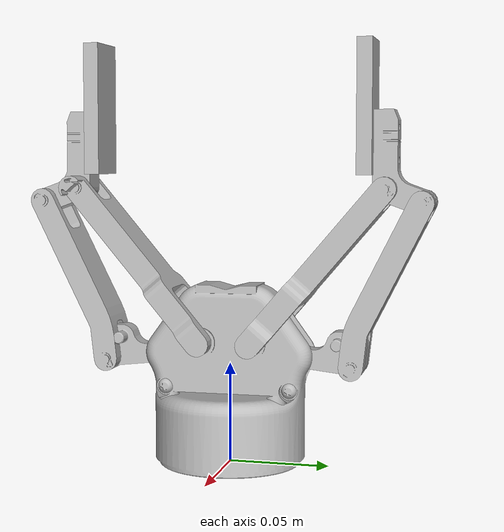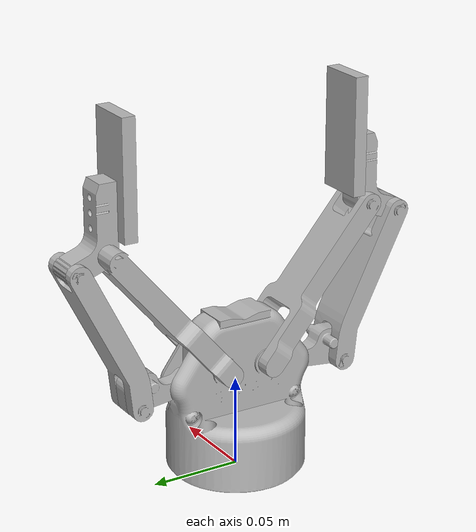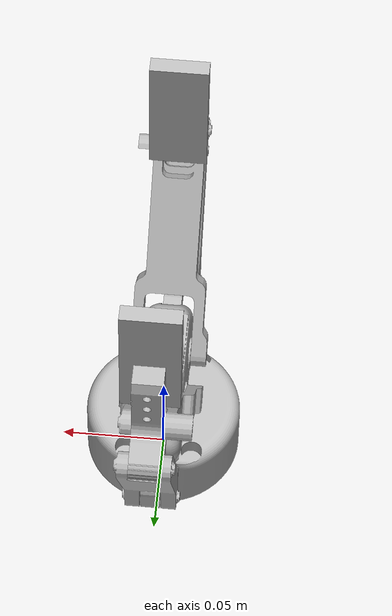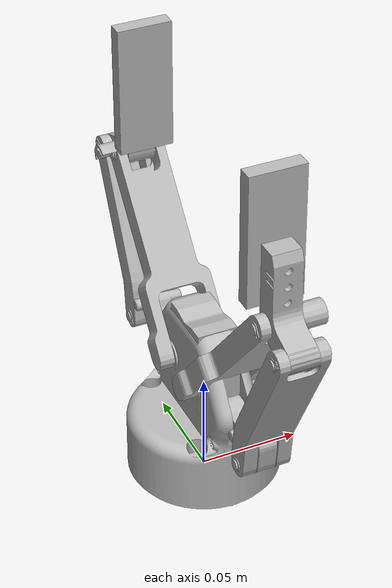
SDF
<sdf version='1.7'>
  <model name='robotiq_arg2f_140_model'>
    <link name='robotiq_arg2f_base_link'>
      <inertial>
        <pose>0 -5e-06 0.03145 0 -0 0</pose>
        <mass>0.22652</mass>
        <inertia>
          <ixx>0.00020005</ixx>
          <ixy>-4.2442e-10</ixy>
          <ixz>-2.9069e-10</ixz>
          <iyy>0.00017832</iyy>
          <iyz>-3.4402e-08</iyz>
          <izz>0.00013478</izz>
        </inertia>
      </inertial>
      <collision name='robotiq_arg2f_base_link_collision'>
        <pose>0 0 0 0 -0 0</pose>
        <geometry>
          <mesh>
            <scale>1 1 1</scale>
            <uri>/home/dan/Projects/Pydrake-robotiq140/catkin_ws/src/robotiq/robotiq_2f_140_gripper_visualization/meshes/collision/robotiq_arg2f_base_link.obj</uri>
          </mesh>
        </geometry>
      </collision>
      <visual name='robotiq_arg2f_base_link_visual'>
        <pose>0 0 0 0 -0 0</pose>
        <geometry>
          <mesh>
            <scale>1 1 1</scale>
            <uri>/home/dan/Projects/Pydrake-robotiq140/catkin_ws/src/robotiq/robotiq_2f_140_gripper_visualization/meshes/visual/robotiq_arg2f_base_link.obj</uri>
          </mesh>
        </geometry>
      </visual>
    </link>
    <joint name='finger_joint' type='revolute'>
      <pose relative_to='robotiq_arg2f_base_link'>0 -0.030601 0.054905 2.2958 -0 0</pose>
      <parent>robotiq_arg2f_base_link</parent>
      <child>left_outer_knuckle</child>
      <axis>
        <xyz>-1 0 0</xyz>
        <limit>
          <lower>0</lower>
          <upper>0.7</upper>
          <effort>1000</effort>
          <velocity>2</velocity>
        </limit>
        <dynamics>
          <spring_reference>0</spring_reference>
          <spring_stiffness>0</spring_stiffness>
        </dynamics>
      </axis>
    </joint>
    <link name='left_outer_knuckle'>
      <pose relative_to='finger_joint'>0 0 0 0 -0 0</pose>
      <inertial>
        <pose>0.000164 0.04584 0.01178 0 -0 0</pose>
        <mass>0.0311462</mass>
        <inertia>
          <ixx>2.96016e-05</ixx>
          <ixy>-1.09755e-07</ixy>
          <ixz>7.40449e-08</ixz>
          <iyy>1.16215e-05</iyy>
          <iyz>1.08762e-05</iyz>
          <izz>2.07508e-05</izz>
        </inertia>
      </inertial>
      <collision name='left_outer_knuckle_collision'>
        <pose>0 0 0 0 -0 0</pose>
        <geometry>
          <mesh>
            <scale>1 1 1</scale>
            <uri>/home/dan/Projects/Pydrake-robotiq140/catkin_ws/src/robotiq/robotiq_2f_140_gripper_visualization/meshes/collision/robotiq_arg2f_140_outer_knuckle.obj</uri>
          </mesh>
        </geometry>
      </collision>
      <collision name='left_outer_knuckle_fixed_joint_lump__left_outer_finger_collision_1'>
        <pose>0 0.01822 0.026002 0 -0 0</pose>
        <geometry>
          <mesh>
            <scale>1 1 1</scale>
            <uri>/home/dan/Projects/Pydrake-robotiq140/catkin_ws/src/robotiq/robotiq_2f_140_gripper_visualization/meshes/collision/robotiq_arg2f_140_outer_finger.obj</uri>
          </mesh>
        </geometry>
      </collision>
      <visual name='left_outer_knuckle_visual'>
        <pose>0 0 0 0 -0 0</pose>
        <geometry>
          <mesh>
            <scale>1 1 1</scale>
            <uri>/home/dan/Projects/Pydrake-robotiq140/catkin_ws/src/robotiq/robotiq_2f_140_gripper_visualization/meshes/visual/robotiq_arg2f_140_outer_knuckle.obj</uri>
          </mesh>
        </geometry>
      </visual>
      <visual name='left_outer_knuckle_fixed_joint_lump__left_outer_finger_visual_1'>
        <pose>0 0.01822 0.026002 0 -0 0</pose>
        <geometry>
          <mesh>
            <scale>1 1 1</scale>
            <uri>/home/dan/Projects/Pydrake-robotiq140/catkin_ws/src/robotiq/robotiq_2f_140_gripper_visualization/meshes/visual/robotiq_arg2f_140_outer_finger.obj</uri>
          </mesh>
        </geometry>
      </visual>
    </link>
    <joint name='left_inner_finger_joint' type='revolute'>
      <pose relative_to='left_outer_knuckle'>0 0.099975 -0.002219 -0.725 0 0</pose>
      <parent>left_outer_knuckle</parent>
      <child>left_inner_finger</child>
      <axis>
        <xyz>1 0 0</xyz>
        <limit>
          <lower>-0.8757</lower>
          <upper>0.8757</upper>
          <effort>1000</effort>
          <velocity>2</velocity>
        </limit>
        <dynamics>
          <spring_reference>0</spring_reference>
          <spring_stiffness>0</spring_stiffness>
        </dynamics>
      </axis>
    </joint>
    <link name='left_inner_finger'>
      <pose relative_to='left_inner_finger_joint'>0 0 0 0 -0 0</pose>
      <inertial>
        <pose>0.0003 0.016008 -0.013695 0 -0 0</pose>
        <mass>0.0104003</mass>
        <inertia>
          <ixx>2.71909e-06</ixx>
          <ixy>1.35402e-21</ixy>
          <ixz>-7.18173e-22</ixz>
          <iyy>7.691e-07</iyy>
          <iyz>6.74715e-07</iyz>
          <izz>2.30315e-06</izz>
        </inertia>
      </inertial>
      <collision name='left_inner_finger_collision'>
        <pose>0 0 0 0 -0 0</pose>
        <geometry>
          <mesh>
            <scale>1 1 1</scale>
            <uri>/home/dan/Projects/Pydrake-robotiq140/catkin_ws/src/robotiq/robotiq_2f_140_gripper_visualization/meshes/collision/robotiq_arg2f_140_inner_finger.obj</uri>
          </mesh>
        </geometry>
      </collision>
      <collision name='left_inner_finger_pad_collision_1'>
        <pose>0 0.045755 -0.02722 0 -0 0</pose>
        <geometry>
          <box>
            <size>0.03 0.07 0.0075</size>
          </box>
        </geometry>
      </collision>
      <visual name='left_inner_finger_visual'>
        <pose>0 0 0 0 -0 0</pose>
        <geometry>
          <mesh>
            <scale>1 1 1</scale>
            <uri>/home/dan/Projects/Pydrake-robotiq140/catkin_ws/src/robotiq/robotiq_2f_140_gripper_visualization/meshes/visual/robotiq_arg2f_140_inner_finger.obj</uri>
          </mesh>
        </geometry>
      </visual>
      <visual name='left_inner_finger_pad_visual_1'>
        <pose>0 0.045755 -0.02722 0 -0 0</pose>
        <geometry>
          <box>
            <size>0.027 0.065 0.0075</size>
          </box>
        </geometry>
      </visual>
    </link>
    <joint name='left_inner_knuckle_joint' type='revolute'>
      <pose relative_to='robotiq_arg2f_base_link'>0 -0.0127 0.06142 2.2958 -0 0</pose>
      <parent>robotiq_arg2f_base_link</parent>
      <child>left_inner_knuckle</child>
      <axis>
        <xyz>1 0 0</xyz>
        <limit>
          <lower>-0.8757</lower>
          <upper>0.8757</upper>
          <effort>1000</effort>
          <velocity>2</velocity>
        </limit>
        <dynamics>
          <spring_reference>0</spring_reference>
          <spring_stiffness>0</spring_stiffness>
        </dynamics>
      </axis>
    </joint>
    <link name='left_inner_knuckle'>
      <pose relative_to='left_inner_knuckle_joint'>0 0 0 0 -0 0</pose>
      <inertial>
        <pose>0.000123 0.050785 0.00104 0 -0 0</pose>
        <mass>0.0271177</mass>
        <inertia>
          <ixx>2.6191e-05</ixx>
          <ixy>-2.43617e-07</ixy>
          <ixz>-6.3779e-09</ixz>
          <iyy>2.82702e-06</iyy>
          <iyz>-5.37201e-07</iyz>
          <izz>2.83696e-05</izz>
        </inertia>
      </inertial>
      <collision name='left_inner_knuckle_collision'>
        <pose>0 0 0 0 -0 0</pose>
        <geometry>
          <mesh>
            <scale>1 1 1</scale>
            <uri>/home/dan/Projects/Pydrake-robotiq140/catkin_ws/src/robotiq/robotiq_2f_140_gripper_visualization/meshes/collision/robotiq_arg2f_140_inner_knuckle.obj</uri>
          </mesh>
        </geometry>
      </collision>
      <visual name='left_inner_knuckle_visual'>
        <pose>0 0 0 0 -0 0</pose>
        <geometry>
          <mesh>
            <scale>1 1 1</scale>
            <uri>/home/dan/Projects/Pydrake-robotiq140/catkin_ws/src/robotiq/robotiq_2f_140_gripper_visualization/meshes/visual/robotiq_arg2f_140_inner_knuckle.obj</uri>
          </mesh>
        </geometry>
      </visual>
    </link>
    <joint name='right_inner_knuckle_joint' type='revolute'>
      <pose relative_to='robotiq_arg2f_base_link'>0 0.0127 0.06142 2.2958 -0 3.14159</pose>
      <parent>robotiq_arg2f_base_link</parent>
      <child>right_inner_knuckle</child>
      <axis>
        <xyz>1 0 0</xyz>
        <limit>
          <lower>-0.8757</lower>
          <upper>0.8757</upper>
          <effort>1000</effort>
          <velocity>2</velocity>
        </limit>
        <dynamics>
          <spring_reference>0</spring_reference>
          <spring_stiffness>0</spring_stiffness>
        </dynamics>
      </axis>
    </joint>
    <link name='right_inner_knuckle'>
      <pose relative_to='right_inner_knuckle_joint'>0 0 0 0 -0 0</pose>
      <inertial>
        <pose>0.000123 0.050785 0.00104 0 -0 0</pose>
        <mass>0.0271177</mass>
        <inertia>
          <ixx>2.6191e-05</ixx>
          <ixy>-2.43617e-07</ixy>
          <ixz>-6.3779e-09</ixz>
          <iyy>2.82702e-06</iyy>
          <iyz>-5.37201e-07</iyz>
          <izz>2.83696e-05</izz>
        </inertia>
      </inertial>
      <collision name='right_inner_knuckle_collision'>
        <pose>0 0 0 0 -0 0</pose>
        <geometry>
          <mesh>
            <scale>1 1 1</scale>
            <uri>/home/dan/Projects/Pydrake-robotiq140/catkin_ws/src/robotiq/robotiq_2f_140_gripper_visualization/meshes/collision/robotiq_arg2f_140_inner_knuckle.obj</uri>
          </mesh>
        </geometry>
      </collision>
      <visual name='right_inner_knuckle_visual'>
        <pose>0 0 0 0 -0 0</pose>
        <geometry>
          <mesh>
            <scale>1 1 1</scale>
            <uri>/home/dan/Projects/Pydrake-robotiq140/catkin_ws/src/robotiq/robotiq_2f_140_gripper_visualization/meshes/visual/robotiq_arg2f_140_inner_knuckle.obj</uri>
          </mesh>
        </geometry>
      </visual>
    </link>
    <joint name='right_outer_knuckle_joint' type='revolute'>
      <pose relative_to='robotiq_arg2f_base_link'>0 0.030601 0.054905 2.2958 -0 -3.14159</pose>
      <parent>robotiq_arg2f_base_link</parent>
      <child>right_outer_knuckle</child>
      <axis>
        <xyz>1 0 0</xyz>
        <limit>
          <lower>-0.725</lower>
          <upper>0.725</upper>
          <effort>1000</effort>
          <velocity>2</velocity>
        </limit>
        <dynamics>
          <spring_reference>0</spring_reference>
          <spring_stiffness>0</spring_stiffness>
        </dynamics>
      </axis>
    </joint>
    <link name='right_outer_knuckle'>
      <pose relative_to='right_outer_knuckle_joint'>0 0 0 0 -0 0</pose>
      <inertial>
        <pose>0.000164 0.04584 0.01178 0 -0 0</pose>
        <mass>0.0311462</mass>
        <inertia>
          <ixx>2.96016e-05</ixx>
          <ixy>-1.09755e-07</ixy>
          <ixz>7.40449e-08</ixz>
          <iyy>1.16215e-05</iyy>
          <iyz>1.08762e-05</iyz>
          <izz>2.07508e-05</izz>
        </inertia>
      </inertial>
      <collision name='right_outer_knuckle_collision'>
        <pose>0 0 0 0 -0 0</pose>
        <geometry>
          <mesh>
            <scale>1 1 1</scale>
            <uri>/home/dan/Projects/Pydrake-robotiq140/catkin_ws/src/robotiq/robotiq_2f_140_gripper_visualization/meshes/collision/robotiq_arg2f_140_outer_knuckle.obj</uri>
          </mesh>
        </geometry>
      </collision>
      <collision name='right_outer_knuckle_fixed_joint_lump__right_outer_finger_collision_1'>
        <pose>0 0.01822 0.026002 0 -0 0</pose>
        <geometry>
          <mesh>
            <scale>1 1 1</scale>
            <uri>/home/dan/Projects/Pydrake-robotiq140/catkin_ws/src/robotiq/robotiq_2f_140_gripper_visualization/meshes/collision/robotiq_arg2f_140_outer_finger.obj</uri>
          </mesh>
        </geometry>
      </collision>
      <visual name='right_outer_knuckle_visual'>
        <pose>0 0 0 0 -0 0</pose>
        <geometry>
          <mesh>
            <scale>1 1 1</scale>
            <uri>/home/dan/Projects/Pydrake-robotiq140/catkin_ws/src/robotiq/robotiq_2f_140_gripper_visualization/meshes/visual/robotiq_arg2f_140_outer_knuckle.obj</uri>
          </mesh>
        </geometry>
      </visual>
      <visual name='right_outer_knuckle_fixed_joint_lump__right_outer_finger_visual_1'>
        <pose>0 0.01822 0.026002 0 -0 0</pose>
        <geometry>
          <mesh>
            <scale>1 1 1</scale>
            <uri>/home/dan/Projects/Pydrake-robotiq140/catkin_ws/src/robotiq/robotiq_2f_140_gripper_visualization/meshes/visual/robotiq_arg2f_140_outer_finger.obj</uri>
          </mesh>
        </geometry>
      </visual>
    </link>
    <joint name='right_inner_finger_joint' type='revolute'>
      <pose relative_to='right_outer_knuckle'>0 0.099975 -0.002219 -0.725 0 0</pose>
      <parent>right_outer_knuckle</parent>
      <child>right_inner_finger</child>
      <axis>
        <xyz>1 0 0</xyz>
        <limit>
          <lower>-0.8757</lower>
          <upper>0.8757</upper>
          <effort>1000</effort>
          <velocity>2</velocity>
        </limit>
        <dynamics>
          <spring_reference>0</spring_reference>
          <spring_stiffness>0</spring_stiffness>
        </dynamics>
      </axis>
    </joint>
    <link name='right_inner_finger'>
      <pose relative_to='right_inner_finger_joint'>0 0 0 0 -0 0</pose>
      <inertial>
        <pose>0.0003 0.016008 -0.013695 0 -0 0</pose>
        <mass>0.0104003</mass>
        <inertia>
          <ixx>2.71909e-06</ixx>
          <ixy>1.35402e-21</ixy>
          <ixz>-7.18173e-22</ixz>
          <iyy>7.691e-07</iyy>
          <iyz>6.74715e-07</iyz>
          <izz>2.30315e-06</izz>
        </inertia>
      </inertial>
      <collision name='right_inner_finger_collision'>
        <pose>0 0 0 0 -0 0</pose>
        <geometry>
          <mesh>
            <scale>1 1 1</scale>
            <uri>/home/dan/Projects/Pydrake-robotiq140/catkin_ws/src/robotiq/robotiq_2f_140_gripper_visualization/meshes/collision/robotiq_arg2f_140_inner_finger.obj</uri>
          </mesh>
        </geometry>
      </collision>
      <collision name='right_inner_finger_pad_collision_1'>
        <pose>0 0.045755 -0.02722 0 -0 0</pose>
        <geometry>
          <box>
            <size>0.03 0.07 0.0075</size>
          </box>
        </geometry>
      </collision>
      <visual name='right_inner_finger_visual'>
        <pose>0 0 0 0 -0 0</pose>
        <geometry>
          <mesh>
            <scale>1 1 1</scale>
            <uri>/home/dan/Projects/Pydrake-robotiq140/catkin_ws/src/robotiq/robotiq_2f_140_gripper_visualization/meshes/visual/robotiq_arg2f_140_inner_finger.obj</uri>
          </mesh>
        </geometry>
      </visual>
      <visual name='right_inner_finger_pad_visual_1'>
        <pose>0 0.045755 -0.02722 0 -0 0</pose>
        <geometry>
          <box>
            <size>0.027 0.065 0.0075</size>
          </box>
        </geometry>
      </visual>
    </link>
  </model>
</sdf>
